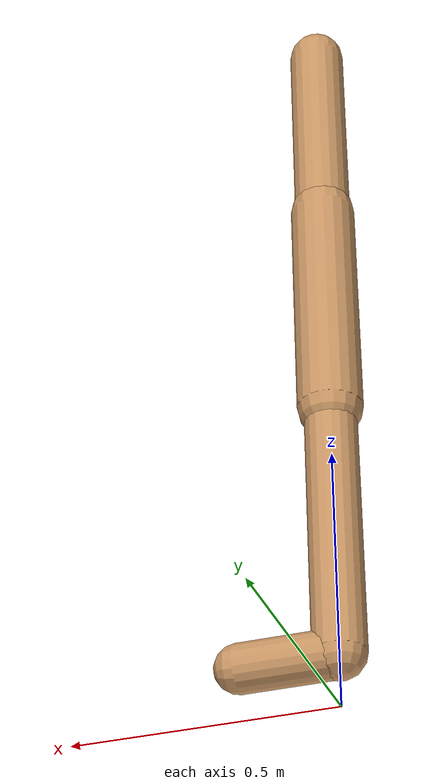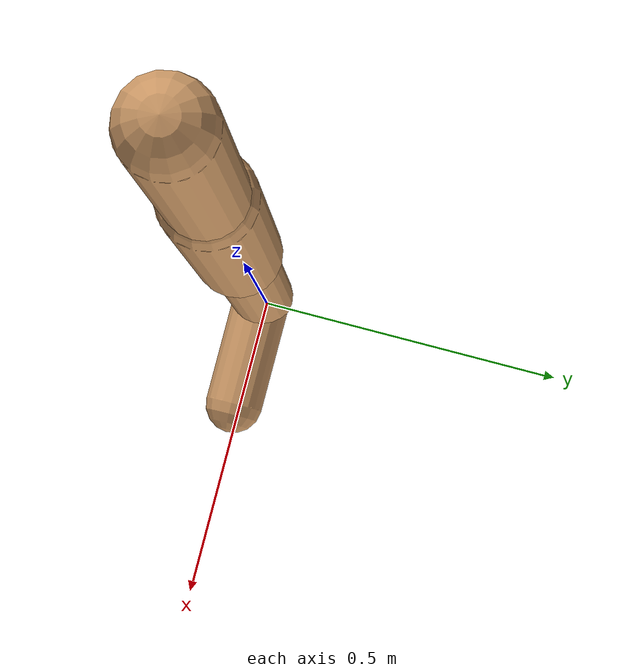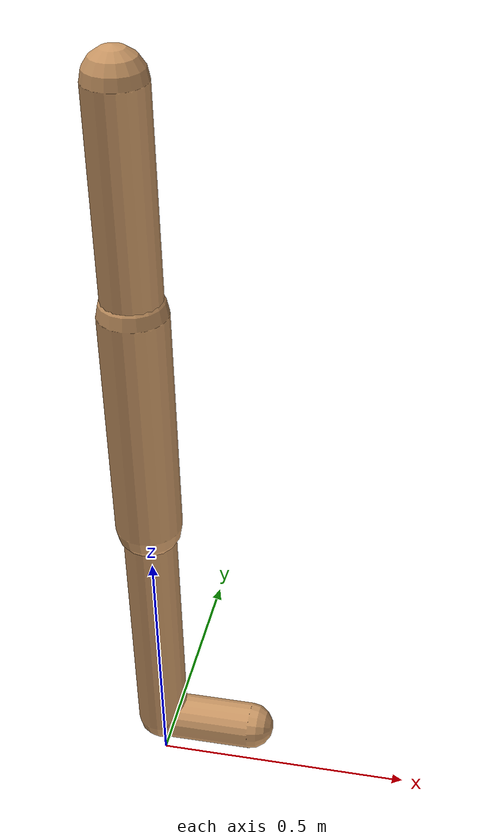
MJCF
<mujoco model="walker2d">
  <compiler angle="degree" coordinate="global" inertiafromgeom="true" />
  <default>
    <joint armature="0.01" damping=".1" limited="true" />
    <geom conaffinity="0" condim="3" contype="1" density="1000" friction="0.8 .1 .1" rgba="0.8 0.6 .4 1" />
  </default>
  <option integrator="RK4" timestep="0.002" />
  <worldbody>

    <body name="torso" pos="0 0 -0.0020155669767546736">
      <joint armature="0" axis="1 0 0" damping="0" limited="false" name="ignorex" pos="0 0 0" stiffness="0" type="slide" />
      <joint armature="0" axis="0 0 1" damping="0" limited="false" name="ignorez" pos="0 0 0" ref="1.25" stiffness="0" type="slide" />
      <joint armature="0" axis="0 1 0" damping="0" limited="false" name="ignorey" pos="0 0 0" stiffness="0" type="hinge" />
      <geom fromto="0 0 1.45 0 0 1.05" name="torso_geom" size="0.05381393436431791" type="capsule" />
      <body name="thigh">
        <joint axis="0 -1 0" name="thigh_joint" pos="0 0 1.05" range="-150 0" type="hinge" />
        <geom fromto="0.0 0.0 1.05 0.0 0.0 0.600954742252147" name="thigh_geom" size="0.06194785049286298" type="capsule" />
        <body name="leg" pos="0.0 0.0 0.0009547422521469784">
          <joint axis="0 -1 0" name="leg_joint" pos="0 0 0.6" range="-150 0" type="hinge" />
          <geom fromto="0.0 0.0 0.6 0.0 0.0 0.10106082472460773" name="leg_geom" size="0.04955828039429038" type="capsule" />
          <body name="foot" pos="0.0 0.0 0.001060824724607723">
            <joint axis="0 -1 0" name="foot_joint" pos="0 0 0.1" range="-45 45" type="hinge" />
            <geom fromto="0.0 0.0 0.1 0.18385181915215967 0.0 0.1" name="foot_geom" size="0.04586789810054751" type="capsule" />
          </body>
        </body>
      </body>

      <body name="thigh_left">
        <joint axis="0 -1 0" name="thigh_left_joint" pos="0 0 1.05" range="-150 0" type="hinge" />
        <geom fromto="0.0 0.0 1.05 0.0 0.0 0.600954742252147" name="thigh_left_geom" rgba=".7 .3 .6 1" size="0.06194785049286298" type="capsule" />
        <body name="leg_left" pos="0.0 0.0 0.0009547422521469784">
          <joint axis="0 -1 0" name="leg_left_joint" pos="0 0 0.6" range="-150 0" type="hinge" />
          <geom fromto="0.0 0.0 0.6 0.0 0.0 0.10106082472460773" name="leg_left_geom" rgba=".7 .3 .6 1" size="0.04955828039429038" type="capsule" />
          <body name="foot_left" pos="0.0 0.0 0.001060824724607723">
            <joint axis="0 -1 0" name="foot_left_joint" pos="0 0 0.1" range="-45 45" type="hinge" />
            <geom fromto="0.0 0.0 0.1 0.18385181915215967 0.0 0.1" name="foot_left_geom" rgba=".7 .3 .6 1" size="0.04586789810054751" type="capsule" />
          </body>
        </body>
      </body>
    </body>
  </worldbody>
  <actuator>

    <motor ctrllimited="true" ctrlrange="-1.0 1.0" gear="100" joint="thigh_joint" />
    <motor ctrllimited="true" ctrlrange="-1.0 1.0" gear="100" joint="leg_joint" />
    <motor ctrllimited="true" ctrlrange="-1.0 1.0" gear="100" joint="foot_joint" />
    <motor ctrllimited="true" ctrlrange="-1.0 1.0" gear="100" joint="thigh_left_joint" />
    <motor ctrllimited="true" ctrlrange="-1.0 1.0" gear="100" joint="leg_left_joint" />
    <motor ctrllimited="true" ctrlrange="-1.0 1.0" gear="100" joint="foot_left_joint" />

  </actuator>
</mujoco>
